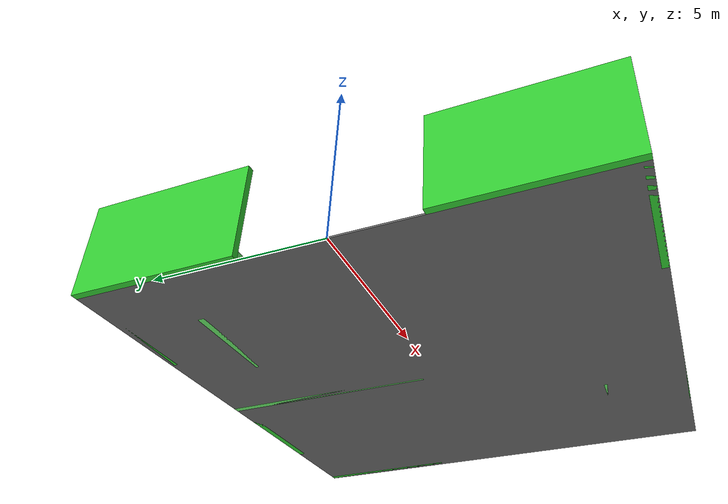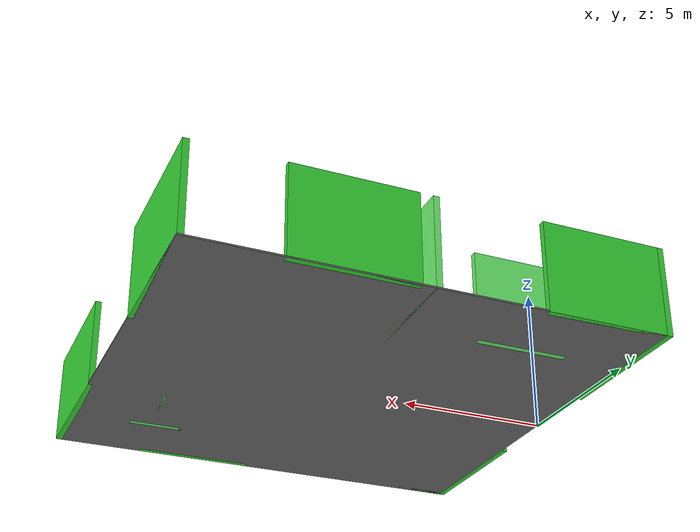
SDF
<?xml version="1.0" ?>
<sdf version="1.9">
  <model name="apartment_environment">
    <static>true</static>
    <link name="structure_link">
      <!-- 物理属性设置 - 适合机器人碰撞检测 -->
      <inertial>
        <mass>1000.0</mass>
        <inertia>
          <ixx>100000.0</ixx>
          <ixy>0.0</ixy>
          <ixz>0.0</ixz>
          <iyy>100000.0</iyy>
          <iyz>0.0</iyz>
          <izz>100000.0</izz>
        </inertia>
      </inertial>
      <collision name="structure_collision">
        <geometry>
          <box>
            <size>15.0 15.0 3.0</size>
          </box>
        </geometry>
        <pose>7.5 0 1.5 0 0 0</pose>
      </collision>

      <!-- 地面 - 机器人行走表面（改为灰色） -->
      <visual name="floor">
        <geometry>
          <box>
            <size>15.0 15.0 0.05</size>
          </box>
        </geometry>
        <pose>7.5 0 0.025 0 0 0</pose>
        <material>
          <ambient>0.2 0.2 0.2 1.0</ambient>  <!-- 灰色环境光 -->
          <diffuse>0.4 0.4 0.4 1.0</diffuse>    <!-- 灰色漫反射 -->
          <specular>0.1 0.1 0.1 1.0</specular>
        </material>
      </visual>
      <collision name="floor_collision">
        <geometry>
          <box>
            <size>15.0 15.0 0.05</size>
          </box>
        </geometry>
        <pose>7.5 0 0.025 0 0 0</pose>
        <surface>
          <friction>
            <ode>
              <mu>0.8</mu>      <!-- 摩擦系数 - 适合轮式机器人 -->
              <mu2>0.8</mu2>
            </ode>
          </friction>
        </surface>
      </collision>

      <!-- 外围墙体 - 带门洞设计 -->
      <!-- 北墙（带2个门洞） -->
      <visual name="outer_wall_north_1">
        <geometry>
          <box>
            <size>4.0 0.2 3.0</size>
          </box>
        </geometry>
        <pose>2.0 7.4 1.5 0 0 0</pose>
        <material>
          <ambient>0.1 0.5 0.1 1.0</ambient>
          <diffuse>0.2 0.8 0.2 1.0</diffuse>
          <specular>0.1 0.1 0.1 1.0</specular>
        </material>
      </visual>
      <collision name="outer_wall_north_1_collision">
        <geometry>
          <box>
            <size>4.0 0.2 3.0</size>
          </box>
        </geometry>
        <pose>2.0 7.4 1.5 0 0 0</pose>
      </collision>

      <visual name="outer_wall_north_2">
        <geometry>
          <box>
            <size>4.0 0.2 3.0</size>
          </box>
        </geometry>
        <pose>10.0 7.4 1.5 0 0 0</pose>
        <material>
          <ambient>0.1 0.5 0.1 1.0</ambient>
          <diffuse>0.2 0.8 0.2 1.0</diffuse>
          <specular>0.1 0.1 0.1 1.0</specular>
        </material>
      </visual>
      <collision name="outer_wall_north_2_collision">
        <geometry>
          <box>
            <size>4.0 0.2 3.0</size>
          </box>
        </geometry>
        <pose>10.0 7.4 1.5 0 0 0</pose>
      </collision>

      <!-- 南墙（带2个门洞） -->
      <visual name="outer_wall_south_1">
        <geometry>
          <box>
            <size>4.0 0.2 3.0</size>
          </box>
        </geometry>
        <pose>2.0 -7.4 1.5 0 0 0</pose>
        <material>
          <ambient>0.1 0.5 0.1 1.0</ambient>
          <diffuse>0.2 0.8 0.2 1.0</diffuse>
          <specular>0.1 0.1 0.1 1.0</specular>
        </material>
      </visual>
      <collision name="outer_wall_south_1_collision">
        <geometry>
          <box>
            <size>4.0 0.2 3.0</size>
          </box>
        </geometry>
        <pose>2.0 -7.4 1.5 0 0 0</pose>
      </collision>

      <visual name="outer_wall_south_2">
        <geometry>
          <box>
            <size>4.0 0.2 3.0</size>
          </box>
        </geometry>
        <pose>10.0 -7.4 1.5 0 0 0</pose>
        <material>
          <ambient>0.1 0.5 0.1 1.0</ambient>
          <diffuse>0.2 0.8 0.2 1.0</diffuse>
          <specular>0.1 0.1 0.1 1.0</specular>
        </material>
      </visual>
      <collision name="outer_wall_south_2_collision">
        <geometry>
          <box>
            <size>4.0 0.2 3.0</size>
          </box>
        </geometry>
        <pose>10.0 -7.4 1.5 0 0 0</pose>
      </collision>

      <!-- 东墙（带1个大门洞 - 主入口） -->
      <visual name="outer_wall_east_1">
        <geometry>
          <box>
            <size>0.2 5.0 3.0</size>
          </box>
        </geometry>
        <pose>14.9 5.0 1.5 0 0 0</pose>
        <material>
          <ambient>0.1 0.5 0.1 1.0</ambient>
          <diffuse>0.2 0.8 0.2 1.0</diffuse>
          <specular>0.1 0.1 0.1 1.0</specular>
        </material>
      </visual>
      <collision name="outer_wall_east_1_collision">
        <geometry>
          <box>
            <size>0.2 5.0 3.0</size>
          </box>
        </geometry>
        <pose>14.9 5.0 1.5 0 0 0</pose>
      </collision>

      <visual name="outer_wall_east_2">
        <geometry>
          <box>
            <size>0.2 5.0 3.0</size>
          </box>
        </geometry>
        <pose>14.9 -5.0 1.5 0 0 0</pose>
        <material>
          <ambient>0.1 0.5 0.1 1.0</ambient>
          <diffuse>0.2 0.8 0.2 1.0</diffuse>
          <specular>0.1 0.1 0.1 1.0</specular>
        </material>
      </visual>
      <collision name="outer_wall_east_2_collision">
        <geometry>
          <box>
            <size>0.2 5.0 3.0</size>
          </box>
        </geometry>
        <pose>14.9 -5.0 1.5 0 0 0</pose>
      </collision>

      <!-- 西墙（带1个门洞） -->
      <visual name="outer_wall_west_1">
        <geometry>
          <box>
            <size>0.2 5.0 3.0</size>
          </box>
        </geometry>
        <pose>-0.1 5.0 1.5 0 0 0</pose>
        <material>
          <ambient>0.1 0.5 0.1 1.0</ambient>
          <diffuse>0.2 0.8 0.2 1.0</diffuse>
          <specular>0.1 0.1 0.1 1.0</specular>
        </material>
      </visual>
      <collision name="outer_wall_west_1_collision">
        <geometry>
          <box>
            <size>0.2 5.0 3.0</size>
          </box>
        </geometry>
        <pose>-0.1 5.0 1.5 0 0 0</pose>
      </collision>

      <visual name="outer_wall_west_2">
        <geometry>
          <box>
            <size>0.2 5.0 3.0</size>
          </box>
        </geometry>
        <pose>-0.1 -5.0 1.5 0 0 0</pose>
        <material>
          <ambient>0.1 0.5 0.1 1.0</ambient>
          <diffuse>0.2 0.8 0.2 1.0</diffuse>
          <specular>0.1 0.1 0.1 1.0</specular>
        </material>
      </visual>
      <collision name="outer_wall_west_2_collision">
        <geometry>
          <box>
            <size>0.2 5.0 3.0</size>
          </box>
        </geometry>
        <pose>-0.1 -5.0 1.5 0 0 0</pose>
      </collision>

      <!-- 内部隔断墙 - 带门洞供机器人通行 -->
      <visual name="inner_wall_1">
        <geometry>
          <box>
            <size>3.0 0.2 3.0</size>
          </box>
        </geometry>
        <pose>3.5 5.0 1.5 0 0 0</pose>
        <material>
          <ambient>0.3 0.7 0.3 1.0</ambient>
          <diffuse>0.4 0.9 0.4 1.0</diffuse>
          <specular>0.1 0.1 0.1 1.0</specular>
        </material>
      </visual>
      <collision name="inner_wall_1_collision">
        <geometry>
          <box>
            <size>3.0 0.2 3.0</size>
          </box>
        </geometry>
        <pose>3.5 5.0 1.5 0 0 0</pose>
      </collision>

      <visual name="inner_wall_2">
        <geometry>
          <box>
            <size>3.0 0.2 3.0</size>
          </box>
        </geometry>
        <pose>11.5 -5.0 1.5 0 0 0</pose>
        <material>
          <ambient>0.3 0.7 0.3 1.0</ambient>
          <diffuse>0.4 0.9 0.4 1.0</diffuse>
          <specular>0.1 0.1 0.1 1.0</specular>
        </material>
      </visual>
      <collision name="inner_wall_2_collision">
        <geometry>
          <box>
            <size>3.0 0.2 3.0</size>
          </box>
        </geometry>
        <pose>11.5 -5.0 1.5 0 0 0</pose>
      </collision>

      <visual name="inner_wall_3">
        <geometry>
          <box>
            <size>0.2 7.0 3.0</size>
          </box>
        </geometry>
        <pose>7.5 4.0 1.5 0 0 0</pose>
        <material>
          <ambient>0.3 0.7 0.3 1.0</ambient>
          <diffuse>0.4 0.9 0.4 1.0</diffuse>
          <specular>0.1 0.1 0.1 1.0</specular>
        </material>
      </visual>
      <collision name="inner_wall_3_collision">
        <geometry>
          <box>
            <size>0.2 7.0 3.0</size>
          </box>
        </geometry>
        <pose>7.5 4.0 1.5 0 0 0</pose>
      </collision>

      <visual name="inner_wall_4">
        <geometry>
          <box>
            <size>0.2 3.0 3.0</size>
          </box>
        </geometry>
        <pose>12.5 -4.0 1.5 0 0 0</pose>
        <material>
          <ambient>0.3 0.7 0.3 1.0</ambient>
          <diffuse>0.4 0.9 0.4 1.0</diffuse>
          <specular>0.1 0.1 0.1 1.0</specular>
        </material>
      </visual>
      <collision name="inner_wall_4_collision">
        <geometry>
          <box>
            <size>0.2 3.0 3.0</size>
          </box>
        </geometry>
        <pose>12.5 -4.0 1.5 0 0 0</pose>
      </collision>
    </link>
  </model>
</sdf>
